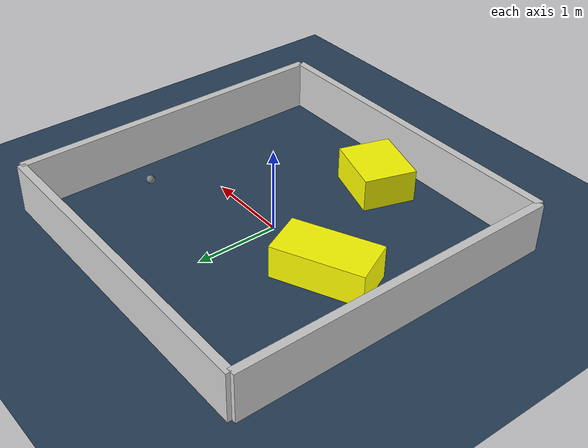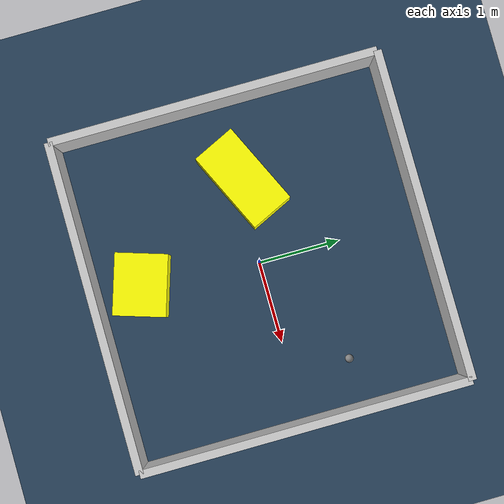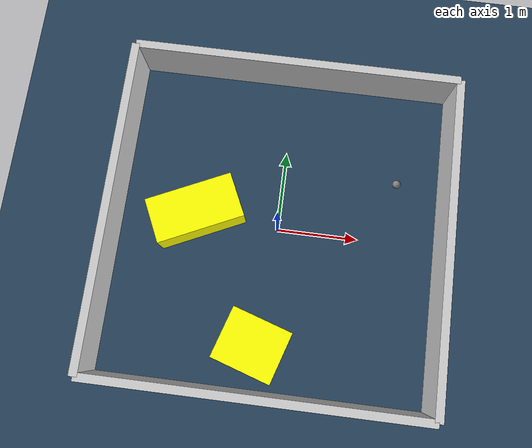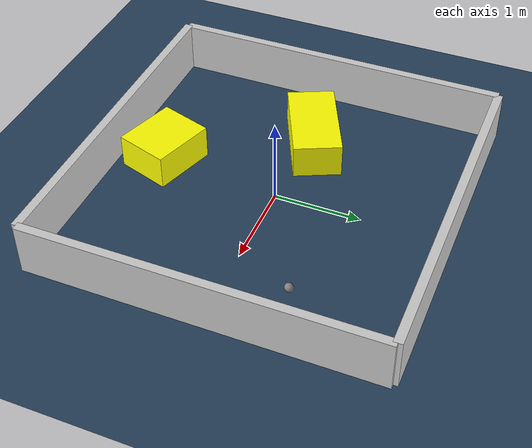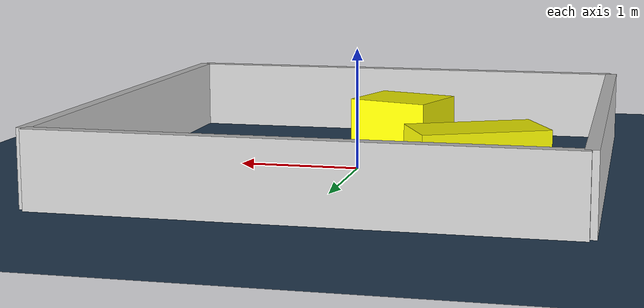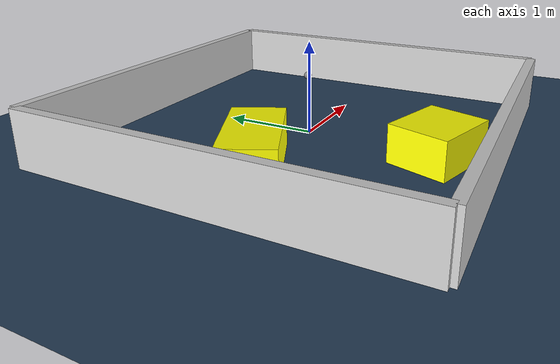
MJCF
<?xml version="1.0" ?>
<mujoco model="generated_environment">
  <option timestep="0.01" integrator="RK4" cone="elliptic"/>
  <default>
    <geom density="1"/>
  </default>
  <asset>
    <texture builtin="gradient" height="3072" rgb1="0.3 0.5 0.7" rgb2="0 0 0" type="skybox" width="512"/>
    <texture builtin="checker" height="300" mark="edge" markrgb="0.8 0.8 0.8" name="groundplane" rgb1="0.2 0.3 0.4" rgb2="0.1 0.2 0.3" type="2d" width="300"/>
    <material name="groundplane" reflectance="0.2" texrepeat="5 5" texture="groundplane" texuniform="true"/>
    <material name="robot" rgba="0.0 1.0 0.0 1"/>
  </asset>
  <worldbody>
    <light dir="0 0 -1" directional="true" pos="0 0 1.5"/>
    <geom condim="4" friction="1.0 0.005 0.001" material="groundplane" name="floor" size="0 0 0.05" type="plane"/>
    <body name="walls">
      <geom name="wall_1" condim="4" pos="-2.0 0.0 0.3" rgba="0.800000011920929 0.800000011920929 0.800000011920929 1.0" size="0.05 2.0 0.3" type="box"/>
      <geom name="wall_2" condim="4" pos="2.0 0.0 0.3" rgba="0.800000011920929 0.800000011920929 0.800000011920929 1.0" size="0.05 2.0 0.3" type="box"/>
      <geom name="wall_3" condim="4" pos="0.0 -2.0 0.3" rgba="0.800000011920929 0.800000011920929 0.800000011920929 1.0" size="2.0 0.05 0.3" type="box"/>
      <geom name="wall_4" condim="4" pos="0.0 2.0 0.3" rgba="0.800000011920929 0.800000011920929 0.800000011920929 1.0" size="2.0 0.05 0.3" type="box"/>
    </body>
    <body name="robot">
      <joint name="joint_x" type="slide" pos="0 0 0" axis="1 0 0"/>
      <joint name="joint_y" type="slide" pos="0 0 0" axis="0 1 0"/>
      <geom name="robot" type="sphere" pos="1.397649960931855 0.7209574053293775 0.2" size="0.05" mass="5." friction="1.0 0.005 0.0001" condim="4"/>
      <site name="sensor_ball"/>
    </body>
    <body name="obstacle_1_movable">
      <geom name="obstacle_1_movable" condim="4" pos="-1.0075961259276518 0.0801736215393305 0.2" euler="0 0 115.12997956967422" friction="1.0 0.005 0.001" rgba="1 1 0 1" size="0.27877081019621075 0.5377541075933263 0.2" type="box" mass="0.1"/>
      <joint type="free"/>
    </body>
    <body name="obstacle_2_movable">
      <geom name="obstacle_2_movable" condim="4" pos="-0.11959975102267983 -1.4276756770125258 0.2" euler="0 0 72.35248344267542" friction="1.0 0.005 0.001" rgba="1 1 0 1" size="0.3171380948961473 0.3737299006371606 0.2" type="box" mass="0.1"/>
      <joint type="free"/>
    </body>
  </worldbody>
  <actuator>
    <motor name="actuator_x" joint="joint_x" gear="1" ctrlrange="-1 1"/>
    <motor name="actuator_y" joint="joint_y" gear="1" ctrlrange="-1 1"/>
  </actuator>
</mujoco>
